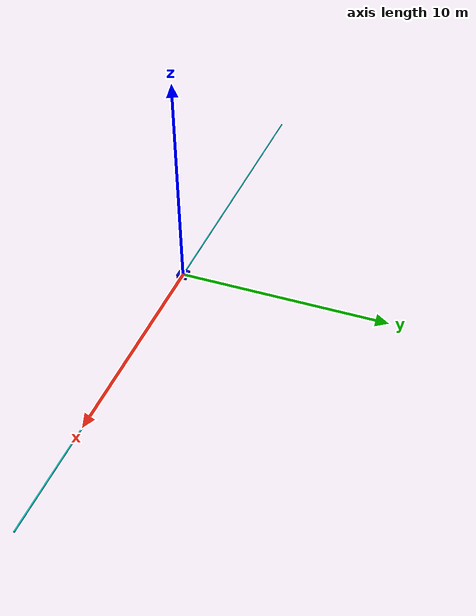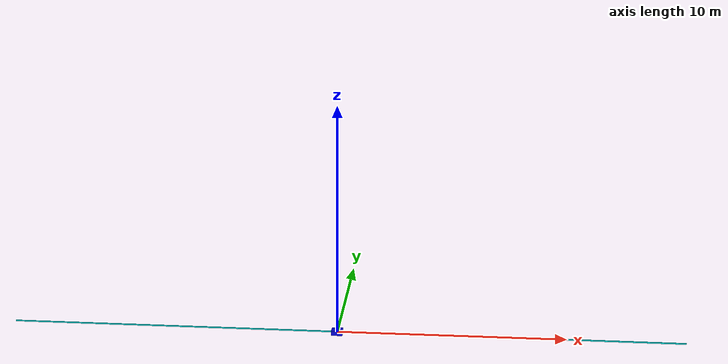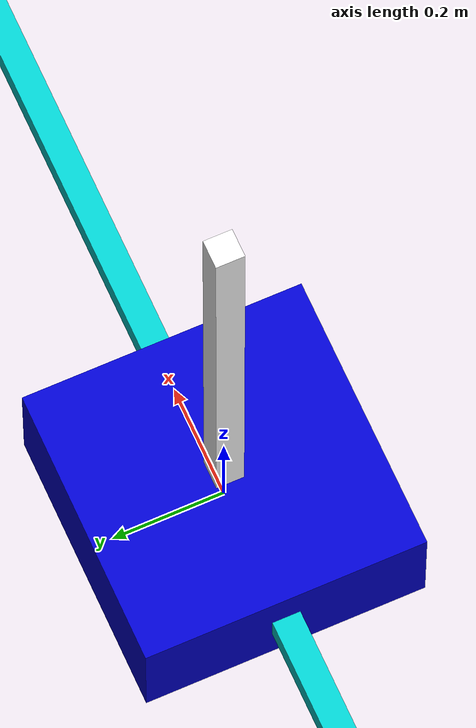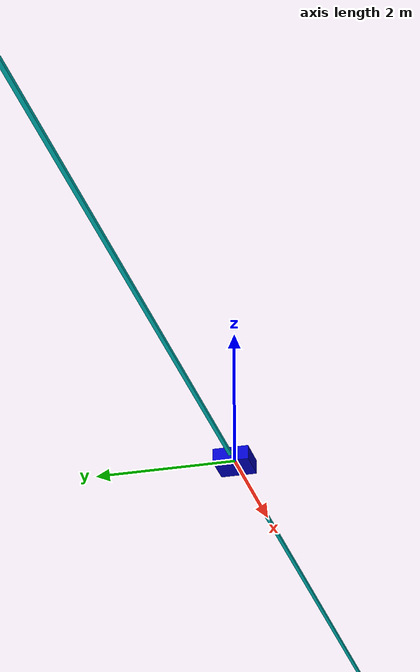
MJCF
<mujoco model="physics">
  <compiler angle="radian" meshdir="../meshes/"/>

  <worldbody>
    <body name="slideBar">
      <inertial pos="0 0 0" mass="1" diaginertia="1 1 1"/>
      <joint name="base_footprint_joint" type="free" limited="false" actuatorfrclimited="false"/>
      <geom size="15 0.025 0.025" type="box" contype="0" conaffinity="0" group="1" density="0" rgba="0 0.8 0.8 1"/>
      <body name="cart">
        <inertial pos="0 0 0" mass="1" diaginertia="1 1 1"/>
        <joint name="slider_to_cart" pos="0 0 0" axis="1 0 0" type="slide" range="-15 15" actuatorfrcrange="-1000 1000"/>
        <geom size="0.25 0.25 0.1" type="box" contype="0" conaffinity="0" group="1" density="0" rgba="0 0 0.8 1"/>
        <geom size="0.25 0.25 0.1" type="box" rgba="0 0 0.8 1"/>
        <body name="pole">
          <inertial pos="0 0 0.5" mass="10" diaginertia="1 1 1"/>
          <joint name="cart_to_pole" pos="0 0 0" axis="0 1 0"/>
          <geom size="0.025 0.025 0.5" pos="0 0 0.5" type="box" contype="0" conaffinity="0" group="1" density="0" rgba="1 1 1 1"/>
          <geom size="0.025 0.025 0.5" pos="0 0 0.5" type="box" rgba="1 1 1 1"/>
        </body>
      </body>
    </body>
  </worldbody>
</mujoco>
